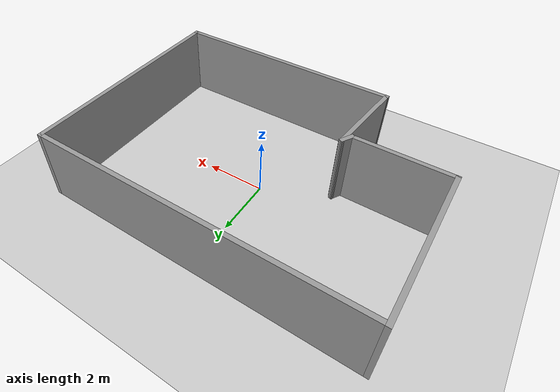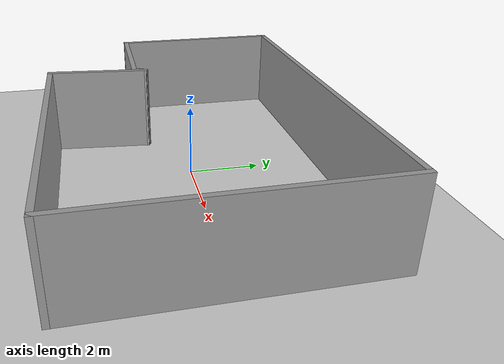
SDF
<sdf version="1.7">
 <world name="default">
  <light name="sun" type="directional">
   <pose>0 0 10 0 -0 0</pose>
   <diffuse>0.8 0.8 0.8 1</diffuse>
   <specular>0.2 0.2 0.2 1</specular>
   <attenuation>
    <range>1000</range>
    <constant>0.9</constant>
    <linear>0.01</linear>
    <quadratic>0.001</quadratic>
   </attenuation>
   <direction>-0.5 0.1 -0.9</direction>
   <spot><inner_angle>0</inner_angle><outer_angle>0</outer_angle><falloff>0</falloff></spot>
  </light>
  <model name="ground_plane">
   <static>1</static>
   <link name="link">
    <collision name="collision">
     <geometry><plane><normal>0 0 1</normal><size>100 100</size></plane></geometry>
     <surface><friction><ode><mu>100</mu><mu2>50</mu2></ode></friction></surface>
    </collision>
    <visual name="visual">
     <cast_shadows>0</cast_shadows>
     <geometry><plane><normal>0 0 1</normal><size>100 100</size></plane></geometry>
     <material>
      <script><uri>file://media/materials/scripts/gazebo.material</uri><name>Gazebo/Grey</name></script>
     </material>
    </visual>
   </link>
  </model>
  <gravity>0 0 -9.8</gravity>
  <magnetic_field>6e-06 2.3e-05 -4.2e-05</magnetic_field>
  <atmosphere type="adiabatic"/>
  <physics type="ode">
   <max_step_size>0.001</max_step_size>
   <real_time_factor>1</real_time_factor>
   <real_time_update_rate>1000</real_time_update_rate>
  </physics>
  <scene><ambient>0.4 0.4 0.4 1</ambient><background>0.7 0.7 0.7 1</background><shadows>1</shadows></scene>
  <spherical_coordinates>
   <surface_model>EARTH_WGS84</surface_model>
   <latitude_deg>0</latitude_deg>
   <longitude_deg>0</longitude_deg>
   <elevation>0</elevation>
   <heading_deg>0</heading_deg>
  </spherical_coordinates>
  <model name="Untitled">
   <pose>0.001823 -0.017336 0 0 -0 0</pose>
   <link name="Wall_12">
    <collision name="Wall_12_Collision">
     <geometry><box><size>3.25 0.15 2.5</size></box></geometry>
     <pose>0 0 1.25 0 -0 0</pose>
    </collision>
    <visual name="Wall_12_Visual">
     <pose>0 0 1.25 0 -0 0</pose>
     <geometry><box><size>3.25 0.15 2.5</size></box></geometry>
     <material>
      <script><uri>file://media/materials/scripts/gazebo.material</uri><name>Gazebo/Grey</name></script>
      <ambient>1 1 1 1</ambient>
     </material>
     <meta><layer>0</layer></meta>
    </visual>
    <pose>-3.875 -1.29652 0 0 -0 0</pose>
   </link>
   <link name="Wall_13">
    <collision name="Wall_13_Collision">
     <geometry><box><size>0.5 0.15 2.5</size></box></geometry>
     <pose>0 0 1.25 0 -0 0</pose>
    </collision>
    <visual name="Wall_13_Visual">
     <pose>0 0 1.25 0 -0 0</pose>
     <geometry><box><size>0.5 0.15 2.5</size></box></geometry>
     <material>
      <script><uri>file://media/materials/scripts/gazebo.material</uri><name>Gazebo/Grey</name></script>
      <ambient>1 1 1 1</ambient>
     </material>
     <meta><layer>0</layer></meta>
    </visual>
    <pose>-2.2375 -1.14496 0 0 -0 1.0472</pose>
   </link>
   <link name="Wall_15">
    <collision name="Wall_15_Collision">
     <geometry><box><size>5.25 0.15 2.5</size></box></geometry>
     <pose>0 0 1.25 0 -0 0</pose>
    </collision>
    <visual name="Wall_15_Visual">
     <pose>0 0 1.25 0 -0 0</pose>
     <geometry><box><size>5.25 0.15 2.5</size></box></geometry>
     <material>
      <script><uri>file://media/materials/scripts/gazebo.material</uri><name>Gazebo/Grey</name></script>
      <ambient>1 1 1 1</ambient>
     </material>
     <meta><layer>0</layer></meta>
    </visual>
    <pose>-5.425 1.25348 0 0 -0 1.5708</pose>
   </link>
   <link name="Wall_16">
    <collision name="Wall_16_Collision">
     <geometry><box><size>11 0.15 2.5</size></box></geometry>
     <pose>0 0 1.25 0 -0 0</pose>
    </collision>
    <visual name="Wall_16_Visual">
     <pose>0 0 1.25 0 -0 0</pose>
     <geometry><box><size>11 0.15 2.5</size></box></geometry>
     <material>
      <script><uri>file://media/materials/scripts/gazebo.material</uri><name>Gazebo/Grey</name></script>
      <ambient>1 1 1 1</ambient>
     </material>
     <meta><layer>0</layer></meta>
    </visual>
    <pose>0 3.80348 0 0 -0 0</pose>
   </link>
   <link name="Wall_17">
    <collision name="Wall_17_Collision">
     <geometry><box><size>7.75 0.15 2.5</size></box></geometry>
     <pose>0 0 1.25 0 -0 0</pose>
    </collision>
    <visual name="Wall_17_Visual">
     <pose>0 0 1.25 0 -0 0</pose>
     <geometry><box><size>7.75 0.15 2.5</size></box></geometry>
     <material>
      <script><uri>file://media/materials/scripts/gazebo.material</uri><name>Gazebo/Grey</name></script>
      <ambient>1 1 1 1</ambient>
     </material>
     <meta><layer>0</layer></meta>
    </visual>
    <pose>5.425 0.003482 0 0 -0 -1.5708</pose>
   </link>
   <link name="Wall_18">
    <collision name="Wall_18_Collision">
     <geometry><box><size>8 0.15 2.5</size></box></geometry>
     <pose>0 0 1.25 0 -0 0</pose>
    </collision>
    <visual name="Wall_18_Visual">
     <pose>0 0 1.25 0 -0 0</pose>
     <geometry><box><size>8 0.15 2.5</size></box></geometry>
     <material>
      <script><uri>file://media/materials/scripts/gazebo.material</uri><name>Gazebo/Grey</name></script>
      <ambient>1 1 1 1</ambient>
     </material>
     <meta><layer>0</layer></meta>
    </visual>
    <pose>1.5 -3.79652 0 0 -0 3.14159</pose>
   </link>
   <link name="Wall_19">
    <collision name="Wall_19_Collision">
     <geometry><box><size>2.96657 0.15 2.5</size></box></geometry>
     <pose>0 0 1.25 0 -0 0</pose>
    </collision>
    <visual name="Wall_19_Visual">
     <pose>0 0 1.25 0 -0 0</pose>
     <geometry><box><size>2.96657 0.15 2.5</size></box></geometry>
     <material>
      <script><uri>file://media/materials/scripts/gazebo.material</uri><name>Gazebo/Grey</name></script>
      <ambient>1 1 1 1</ambient>
     </material>
     <meta><layer>0</layer></meta>
    </visual>
    <pose>-2.2875 -2.39496 0 0 -0 1.473</pose>
   </link>
   <static>1</static>
  </model>
 </world>
</sdf>
